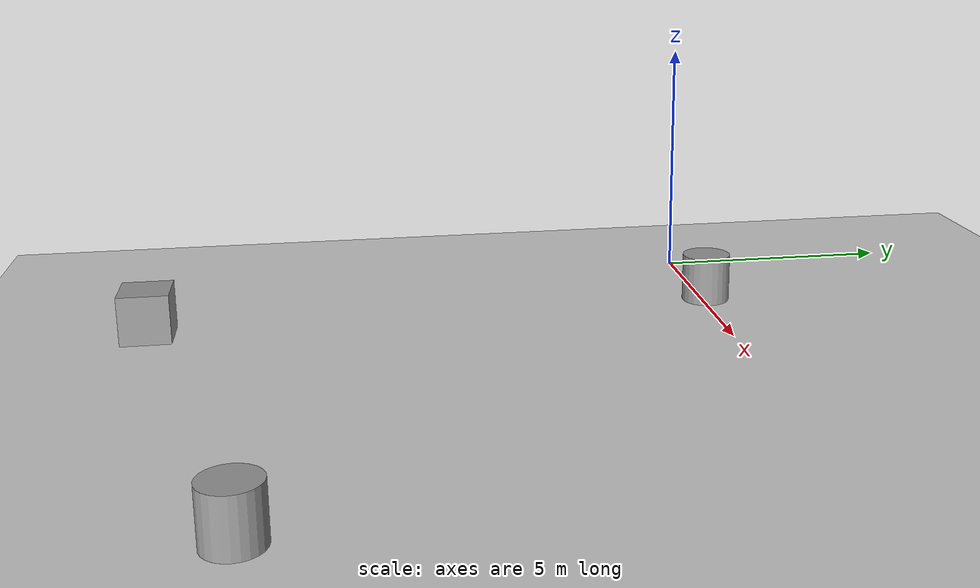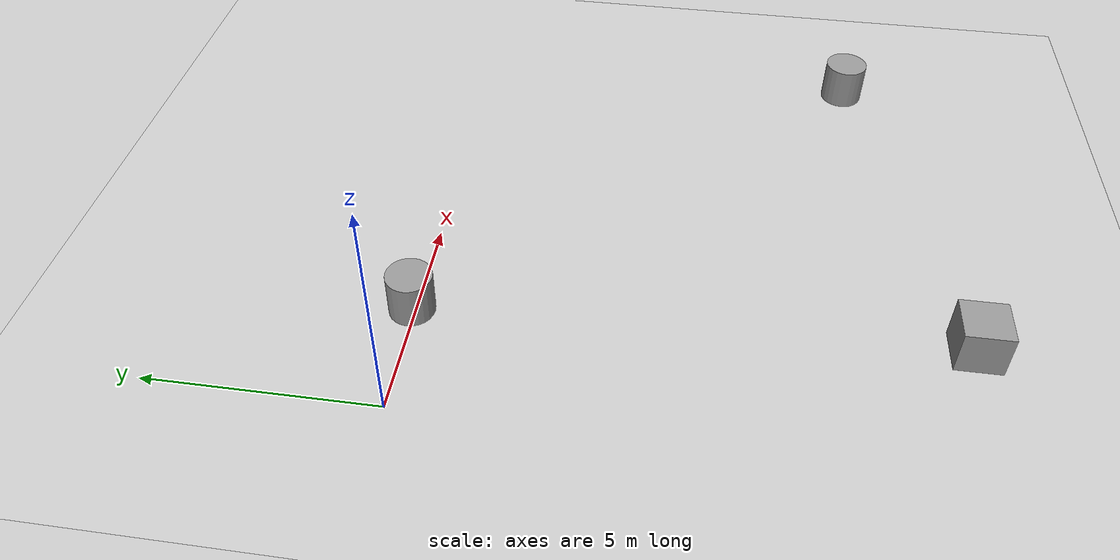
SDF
<sdf version="1.7">
 <world name="empty">
  <model name="ground_plane">
   <static>1</static>
   <link name="link">
    <collision name="collision">
     <geometry><plane><normal>0 0 1</normal><size>100 100</size></plane></geometry>
    </collision>
    <visual name="visual">
     <geometry><plane><normal>0 0 1</normal><size>100 100</size></plane></geometry>
     <material>
      <ambient>0.8 0.8 0.8 1</ambient>
      <diffuse>0.8 0.8 0.8 1</diffuse>
      <specular>0.8 0.8 0.8 1</specular>
     </material>
    </visual>
    <inertial>
     <mass>1</mass>
     <inertia><ixx>1</ixx><ixy>0</ixy><ixz>0</ixz><iyy>1</iyy><iyz>0</iyz><izz>1</izz></inertia>
    </inertial>
   </link>
  </model>
  <model name="unit_cylinder">
   <pose>2.62434 0.090883 0.499997 3e-06 3e-06 0</pose>
   <link name="link">
    <inertial>
     <mass>1</mass>
     <inertia><ixx>0.145833</ixx><ixy>0</ixy><ixz>0</ixz><iyy>0.145833</iyy><iyz>0</iyz><izz>0.125</izz></inertia>
    </inertial>
    <collision name="collision">
     <geometry><cylinder><radius>0.5</radius><length>1</length></cylinder></geometry>
    </collision>
    <visual name="visual">
     <geometry><cylinder><radius>0.5</radius><length>1</length></cylinder></geometry>
     <material>
      <script><name>Gazebo/Grey</name><uri>file://media/materials/scripts/gazebo.material</uri></script>
     </material>
    </visual>
   </link>
  </model>
  <model name="unit_box_0">
   <pose>3.07173 -11.4979 0.499995 -1e-05 -0 0</pose>
   <link name="link">
    <inertial>
     <mass>1</mass>
     <inertia>
      <ixx>0.166667</ixx>
      <ixy>0</ixy>
      <ixz>0</ixz>
      <iyy>0.166667</iyy>
      <iyz>0</iyz>
      <izz>0.166667</izz>
     </inertia>
    </inertial>
    <collision name="collision"><geometry><box><size>1 1 1</size></box></geometry></collision>
    <visual name="visual">
     <geometry><box><size>1 1 1</size></box></geometry>
     <material>
      <script><name>Gazebo/Grey</name><uri>file://media/materials/scripts/gazebo.material</uri></script>
     </material>
    </visual>
   </link>
  </model>
  <model name="unit_cylinder_0">
   <pose>11.799 -9.28538 0.499997 3e-06 4e-06 -0</pose>
   <link name="link">
    <inertial>
     <mass>1</mass>
     <inertia><ixx>0.145833</ixx><ixy>0</ixy><ixz>0</ixz><iyy>0.145833</iyy><iyz>0</iyz><izz>0.125</izz></inertia>
    </inertial>
    <collision name="collision">
     <geometry><cylinder><radius>0.5</radius><length>1</length></cylinder></geometry>
    </collision>
    <visual name="visual">
     <geometry><cylinder><radius>0.5</radius><length>1</length></cylinder></geometry>
     <material>
      <script><name>Gazebo/Grey</name><uri>file://media/materials/scripts/gazebo.material</uri></script>
     </material>
    </visual>
   </link>
  </model>
 </world>
</sdf>
